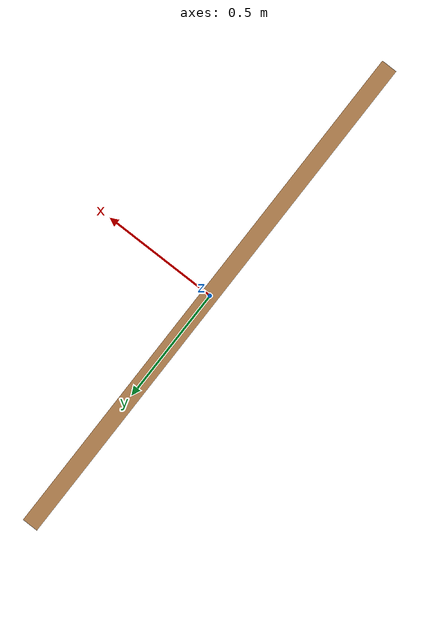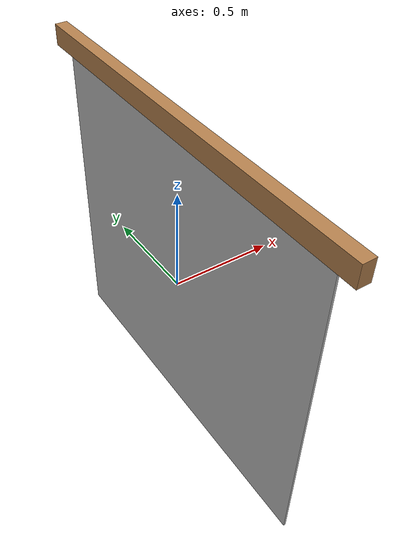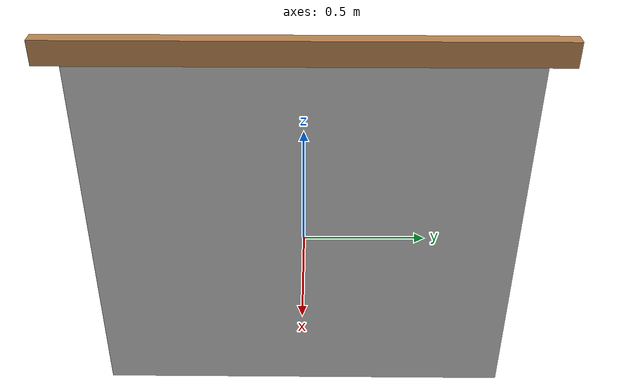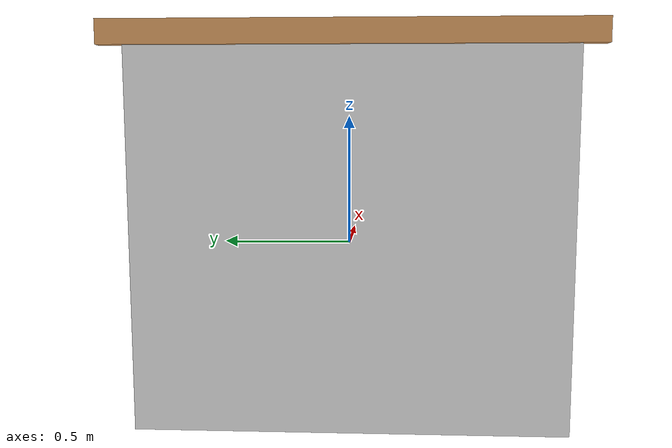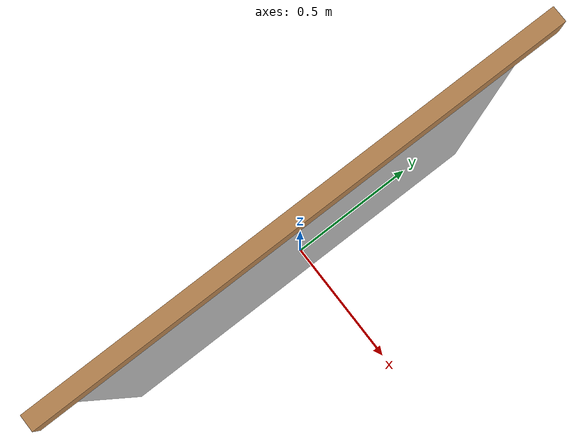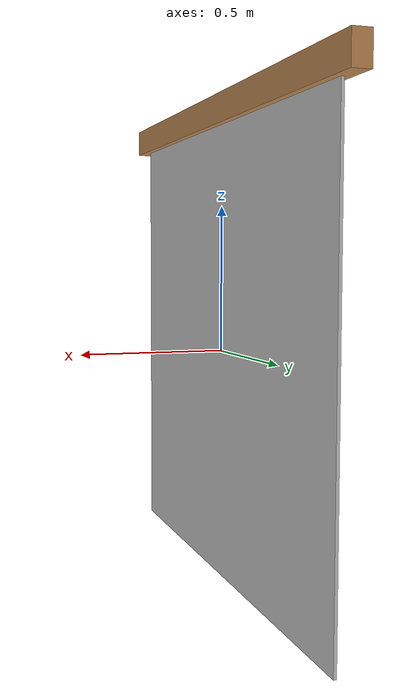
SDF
<?xml version="1.0" ?>
<sdf version="1.5">
  <model name="env_curtain">
    <static>true</static>
    <link name="link">
      <collision name="collision">
        <geometry>
          <box>
            <size>0.01 1.8 1.6</size>
          </box>
        </geometry>
        <surface>
          <friction>
            <ode>
              <mu>100</mu>
              <mu2>50</mu2>
            </ode>
          </friction>
        </surface>
      </collision>
      <visual name="visual">
        <cast_shadows>false</cast_shadows>
        <geometry>
          <box>
            <size>0.01 1.8 1.6</size>
          </box>
        </geometry>
        <material>
          <script>
            <uri>model://env_curtain/materials/test_texture.material</uri>
            <name>CurtainTexture</name>
          </script>
        </material>
      </visual>

      <visual name="visual_top">
        <pose>0 0 0.83 0 0 0</pose>
        <cast_shadows>false</cast_shadows>
        <geometry>
          <box>
            <size>0.06 2.0 0.1</size>
          </box>
        </geometry>
        <material>
          <script>
            <uri>model://env_curtain/materials/test_texture.material</uri>
            <name>WoodTecture1</name>
          </script>
        </material>
      </visual>
    </link>
  </model>
</sdf>
